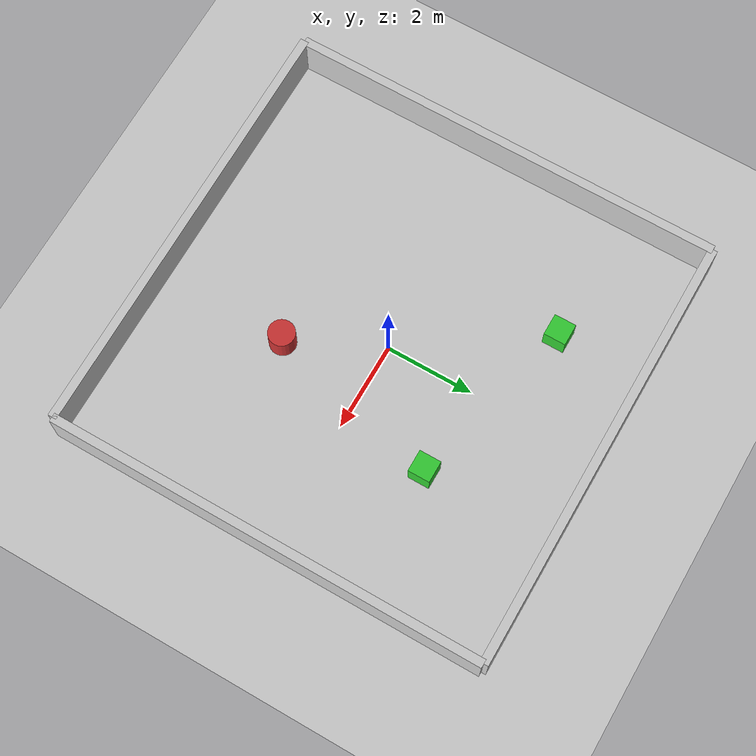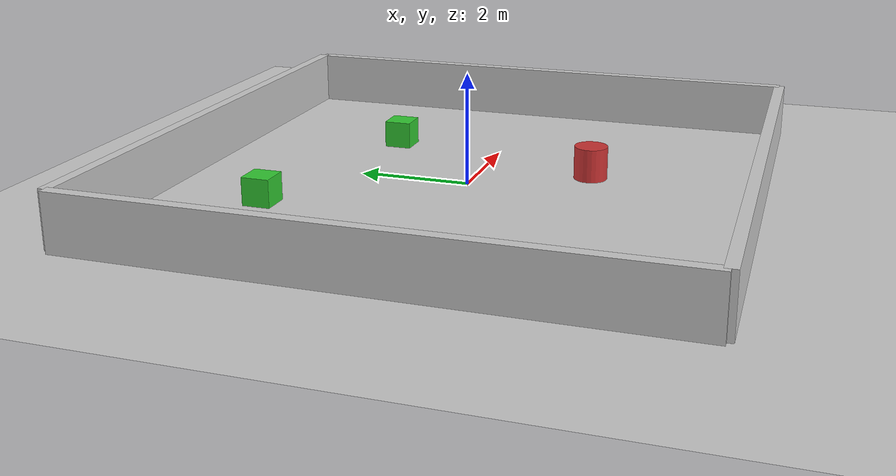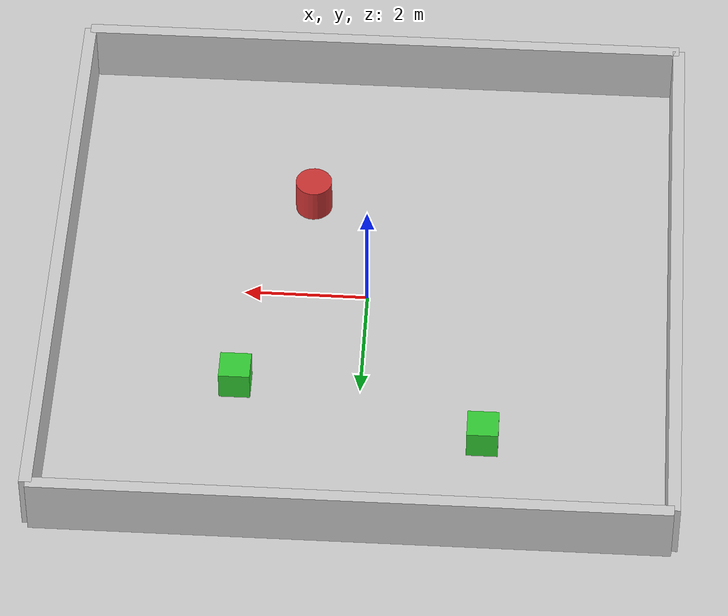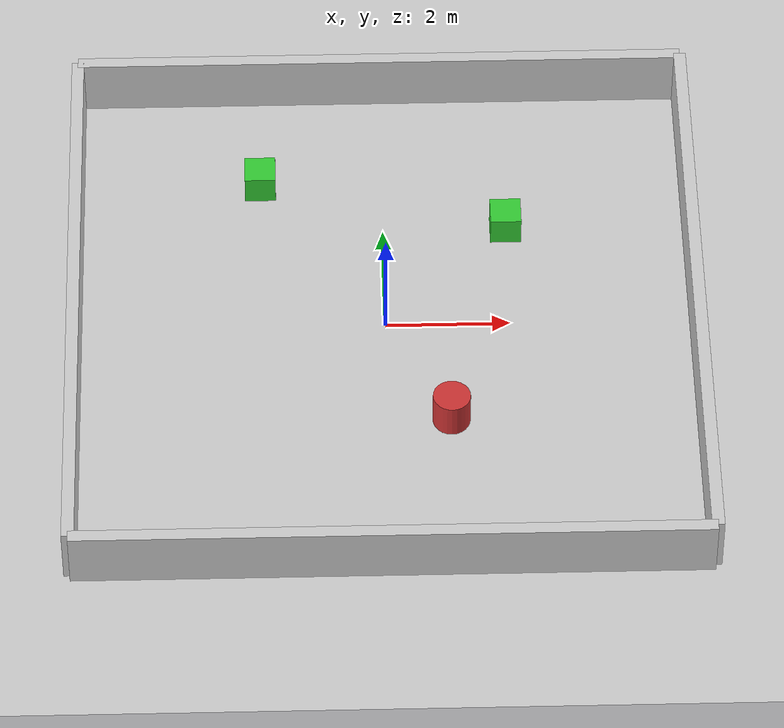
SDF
<?xml version="1.0"?>
<sdf version="1.6">
  <world name="room">

    <!-- Physics engine settings -->
    <physics type="ode">
      <real_time_update_rate>1000.0</real_time_update_rate>
      <max_step_size>0.001</max_step_size>
      <real_time_factor>1</real_time_factor>
    </physics>

    <!-- Sunlight -->
    <include>
      <uri>model://sun</uri>
    </include>

    <!-- Ground plane -->
    <include>
      <uri>model://ground_plane</uri>
    </include>

    <!-- ========== ROOM WALLS ========== -->
    <!-- North wall -->
    <model name="wall_north">
      <static>true</static>
      <pose>0 5 0.5 0 0 0</pose>
      <link name="link">
        <collision name="collision">
          <geometry><box><size>10 0.2 1</size></box></geometry>
        </collision>
        <visual name="visual">
          <geometry><box><size>10 0.2 1</size></box></geometry>
          <material>
            <ambient>0.8 0.8 0.8 1</ambient>
          </material>
        </visual>
      </link>
    </model>

    <!-- South wall -->
    <model name="wall_south">
      <static>true</static>
      <pose>0 -5 0.5 0 0 0</pose>
      <link name="link">
        <collision name="collision">
          <geometry><box><size>10 0.2 1</size></box></geometry>
        </collision>
        <visual name="visual">
          <geometry><box><size>10 0.2 1</size></box></geometry>
          <material>
            <ambient>0.8 0.8 0.8 1</ambient>
          </material>
        </visual>
      </link>
    </model>

    <!-- East wall -->
    <model name="wall_east">
      <static>true</static>
      <pose>5 0 0.5 0 0 0</pose>
      <link name="link">
        <collision name="collision">
          <geometry><box><size>0.2 10 1</size></box></geometry>
        </collision>
        <visual name="visual">
          <geometry><box><size>0.2 10 1</size></box></geometry>
          <material>
            <ambient>0.8 0.8 0.8 1</ambient>
          </material>
        </visual>
      </link>
    </model>

    <!-- West wall -->
    <model name="wall_west">
      <static>true</static>
      <pose>-5 0 0.5 0 0 0</pose>
      <link name="link">
        <collision name="collision">
          <geometry><box><size>0.2 10 1</size></box></geometry>
        </collision>
        <visual name="visual">
          <geometry><box><size>0.2 10 1</size></box></geometry>
          <material>
            <ambient>0.8 0.8 0.8 1</ambient>
          </material>
        </visual>
      </link>
    </model>

    <!-- ========== OBSTACLES ========== -->
    <!-- Box obstacle 1 -->
    <model name="box_1">
      <static>true</static>
      <pose>2 2 0.25 0 0 0</pose>
      <link name="link">
        <collision name="collision">
          <geometry><box><size>0.5 0.5 0.5</size></box></geometry>
        </collision>
        <visual name="visual">
          <geometry><box><size>0.5 0.5 0.5</size></box></geometry>
          <material><ambient>0.2 0.8 0.2 1</ambient></material>
        </visual>
      </link>
    </model>

    <!-- Box obstacle 2 -->
    <model name="box_2">
      <static>true</static>
      <pose>-2 3 0.25 0 0 0</pose>
      <link name="link">
        <collision name="collision">
          <geometry><box><size>0.5 0.5 0.5</size></box></geometry>
        </collision>
        <visual name="visual">
          <geometry><box><size>0.5 0.5 0.5</size></box></geometry>
          <material><ambient>0.2 0.8 0.2 1</ambient></material>
        </visual>
      </link>
    </model>

    <!-- Cylinder obstacle -->
    <model name="cylinder_1">
      <static>true</static>
      <pose>1 -2 0.3 0 0 0</pose>
      <link name="link">
        <collision name="collision">
          <geometry><cylinder><radius>0.3</radius><length>0.6</length></cylinder></geometry>
        </collision>
        <visual name="visual">
          <geometry><cylinder><radius>0.3</radius><length>0.6</length></cylinder></geometry>
          <material><ambient>0.8 0.2 0.2 1</ambient></material>
        </visual>
      </link>
    </model>

  </world>
</sdf>
